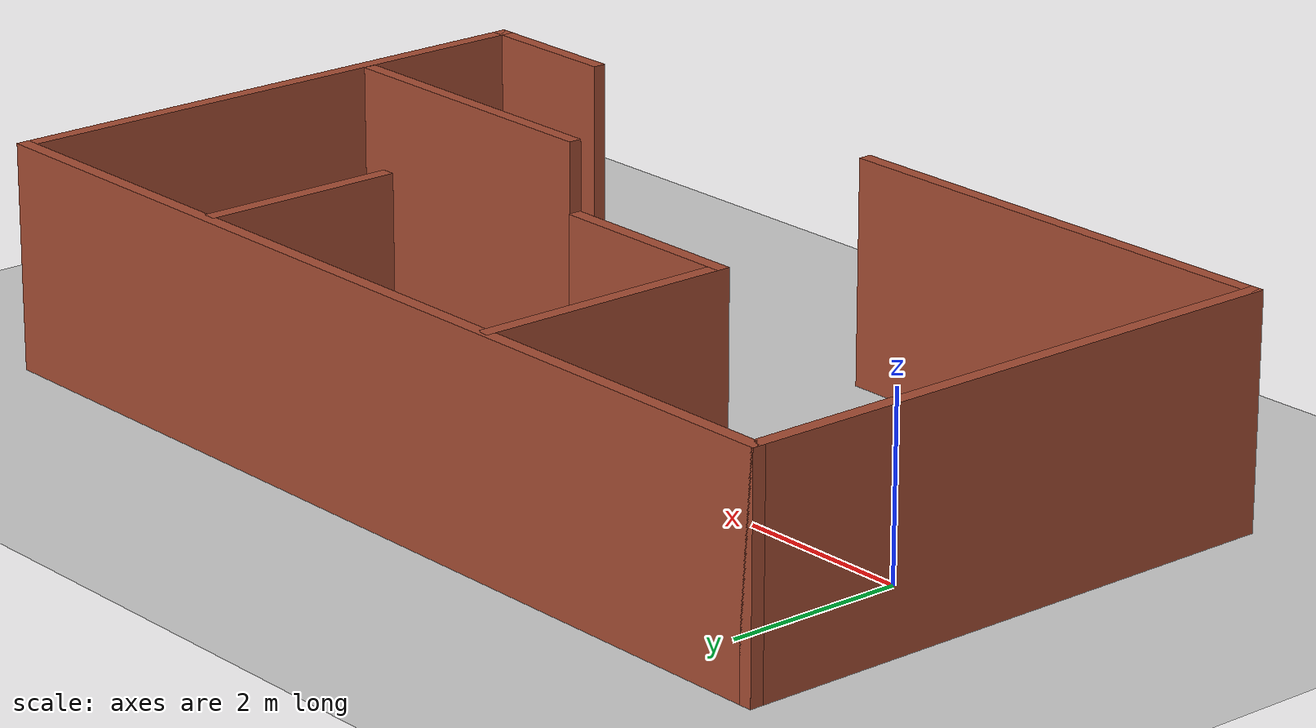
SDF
<sdf version="1.7">
 <world name="default">
  <light name="sun" type="directional">
   <pose>0 0 10 0 -0 0</pose>
   <diffuse>0.8 0.8 0.8 1</diffuse>
   <specular>0.2 0.2 0.2 1</specular>
   <attenuation>
    <range>1000</range>
    <constant>0.9</constant>
    <linear>0.01</linear>
    <quadratic>0.001</quadratic>
   </attenuation>
   <direction>-0.5 0.1 -0.9</direction>
   <spot><inner_angle>0</inner_angle><outer_angle>0</outer_angle><falloff>0</falloff></spot>
  </light>
  <model name="ground_plane">
   <static>1</static>
   <link name="link">
    <collision name="collision">
     <geometry><plane><normal>0 0 1</normal><size>100 100</size></plane></geometry>
     <surface>
      <contact><collide_bitmask>65535</collide_bitmask></contact>
      <friction><ode><mu>100</mu><mu2>50</mu2></ode></friction>
     </surface>
    </collision>
    <visual name="visual">
     <cast_shadows>0</cast_shadows>
     <geometry><plane><normal>0 0 1</normal><size>100 100</size></plane></geometry>
     <material>
      <script><uri>file://media/materials/scripts/gazebo.material</uri><name>Gazebo/Grey</name></script>
     </material>
    </visual>
   </link>
  </model>
  <gravity>0 0 -9.8</gravity>
  <magnetic_field>6e-06 2.3e-05 -4.2e-05</magnetic_field>
  <atmosphere type="adiabatic"/>
  <physics type="ode">
   <max_step_size>0.001</max_step_size>
   <real_time_factor>1</real_time_factor>
   <real_time_update_rate>1000</real_time_update_rate>
  </physics>
  <scene><ambient>0.4 0.4 0.4 1</ambient><background>0.7 0.7 0.7 1</background><shadows>1</shadows></scene>
  <audio><device>default</device></audio>
  <spherical_coordinates>
   <surface_model>EARTH_WGS84</surface_model>
   <latitude_deg>0</latitude_deg>
   <longitude_deg>0</longitude_deg>
   <elevation>0</elevation>
   <heading_deg>0</heading_deg>
  </spherical_coordinates>
  <model name="my_bot">
   <link name="base_link">
    <inertial>
     <pose>0.068049 0 0.1 0 -0 0</pose>
     <mass>0.61</mass>
     <inertia>
      <ixx>0.00568583</ixx>
      <ixy>0</ixy>
      <ixz>0.000501</ixz>
      <iyy>0.00596412</iyy>
      <iyz>0</iyz>
      <izz>0.00786829</izz>
     </inertia>
    </inertial>
    <collision name="base_link_fixed_joint_lump__chassis_collision">
     <pose>0.075 0 0.085 0 -0 0</pose>
     <geometry><box><size>0.3 0.3 0.15</size></box></geometry>
    </collision>
    <collision name="base_link_fixed_joint_lump__caster_wheel_collision_1">
     <pose>0.151 0 -0 0 -0 0</pose>
     <geometry><sphere><radius>0.05</radius></sphere></geometry>
     <surface><friction><ode><mu>0.001</mu><mu2>0.001</mu2></ode></friction></surface>
    </collision>
    <collision name="base_link_fixed_joint_lump__laser_frame_collision_2">
     <pose>0.025 0 0.185 0 -0 0</pose>
     <geometry><cylinder><length>0.05</length><radius>0.04</radius></cylinder></geometry>
    </collision>
    <visual name="base_link_fixed_joint_lump__chassis_visual">
     <pose>0.075 0 0.085 0 -0 0</pose>
     <geometry><box><size>0.3 0.3 0.15</size></box></geometry>
     <material>
      <script><name>Gazebo/Orange</name><uri>file://media/materials/scripts/gazebo.material</uri></script>
     </material>
    </visual>
    <visual name="base_link_fixed_joint_lump__caster_wheel_visual_1">
     <pose>0.151 0 -0 0 -0 0</pose>
     <geometry><sphere><radius>0.05</radius></sphere></geometry>
     <material>
      <script><name>Gazebo/Black</name><uri>file://media/materials/scripts/gazebo.material</uri></script>
     </material>
    </visual>
    <visual name="base_link_fixed_joint_lump__laser_frame_visual_2">
     <pose>0.025 0 0.185 0 -0 0</pose>
     <geometry><cylinder><length>0.05</length><radius>0.04</radius></cylinder></geometry>
     <material>
      <script><name>Gazebo/Black</name><uri>file://media/materials/scripts/gazebo.material</uri></script>
     </material>
    </visual>
    <sensor name="laser" type="ray">
     <visualize>1</visualize>
     <always_on>1</always_on>
     <update_rate>10</update_rate>
     <ray>
      <scan>
       <horizontal>
        <samples>360</samples>
        <resolution>1</resolution>
        <min_angle>-3.14</min_angle>
        <max_angle>3.14</max_angle>
       </horizontal>
       <vertical><samples>1</samples><min_angle>0</min_angle><max_angle>0</max_angle></vertical>
      </scan>
      <range><min>0.3</min><max>12</max></range>
     </ray>
     <plugin name="laser_controller" filename="libgazebo_ros_ray_sensor.so">
      <ros><argument>~/out:=scan</argument></ros>
      <output_type>sensor_msgs/LaserScan</output_type>
      <frame_name>laser_frame</frame_name>
     </plugin>
     <pose>0.025 0 0.185 0 -0 0</pose>
    </sensor>
   </link>
   <joint name="left_wheel_joint" type="revolute">
    <pose relative_to="base_link">0 0.175 0 -1.5708 0 0</pose>
    <parent>base_link</parent>
    <child>left_wheel</child>
    <axis>
     <xyz>0 0 1</xyz>
     <limit><lower>-1e+16</lower><upper>1e+16</upper></limit>
     <dynamics><spring_reference>0</spring_reference><spring_stiffness>0</spring_stiffness></dynamics>
    </axis>
   </joint>
   <link name="left_wheel">
    <pose relative_to="left_wheel_joint">0 0 0 0 -0 0</pose>
    <inertial>
     <mass>0.05</mass>
     <inertia>
      <ixx>3.79167e-05</ixx>
      <ixy>0</ixy>
      <ixz>0</ixz>
      <iyy>3.79167e-05</iyy>
      <iyz>0</iyz>
      <izz>6.25e-05</izz>
     </inertia>
    </inertial>
    <collision name="left_wheel_collision"><geometry><sphere><radius>0.05</radius></sphere></geometry></collision>
    <visual name="left_wheel_visual">
     <geometry><cylinder><length>0.04</length><radius>0.05</radius></cylinder></geometry>
     <material>
      <script><name>Gazebo/Blue</name><uri>file://media/materials/scripts/gazebo.material</uri></script>
     </material>
    </visual>
   </link>
   <joint name="right_wheel_joint" type="revolute">
    <pose relative_to="base_link">0 -0.175 0 1.5708 -0 0</pose>
    <parent>base_link</parent>
    <child>right_wheel</child>
    <axis>
     <xyz>0 0 -1</xyz>
     <limit><lower>-1e+16</lower><upper>1e+16</upper></limit>
     <dynamics><spring_reference>0</spring_reference><spring_stiffness>0</spring_stiffness></dynamics>
    </axis>
   </joint>
   <link name="right_wheel">
    <pose relative_to="right_wheel_joint">0 0 0 0 -0 0</pose>
    <inertial>
     <mass>0.05</mass>
     <inertia>
      <ixx>3.79167e-05</ixx>
      <ixy>0</ixy>
      <ixz>0</ixz>
      <iyy>3.79167e-05</iyy>
      <iyz>0</iyz>
      <izz>6.25e-05</izz>
     </inertia>
    </inertial>
    <collision name="right_wheel_collision">
     <geometry><sphere><radius>0.05</radius></sphere></geometry>
    </collision>
    <visual name="right_wheel_visual">
     <geometry><cylinder><length>0.04</length><radius>0.05</radius></cylinder></geometry>
     <material>
      <script><name>Gazebo/Blue</name><uri>file://media/materials/scripts/gazebo.material</uri></script>
     </material>
    </visual>
   </link>
   <static>0</static>
   <plugin name="diff_drive" filename="libgazebo_ros_diff_drive.so">
    <left_joint>left_wheel_joint</left_joint>
    <right_joint>right_wheel_joint</right_joint>
    <wheel_separation>0.35</wheel_separation>
    <wheel_diameter>0.1</wheel_diameter>
    <max_wheel_torque>200</max_wheel_torque>
    <max_wheel_acceleration>10</max_wheel_acceleration>
    <odometry_frame>odom</odometry_frame>
    <robot_base_frame>base_link</robot_base_frame>
    <publish_odom>1</publish_odom>
    <publish_odom_tf>1</publish_odom_tf>
    <publish_wheel_tf>1</publish_wheel_tf>
   </plugin>
   <pose>-0.039986 0.000838 0.049997 1.5e-05 -2.1e-05 0.002583</pose>
  </model>
  <model name="new">
   <pose>4.46809 -0.309616 0 0 -0 0</pose>
   <link name="Wall_10">
    <collision name="Wall_10_Collision">
     <geometry><box><size>1.75 0.15 2.5</size></box></geometry>
     <pose>0 0 1.25 0 -0 0</pose>
    </collision>
    <visual name="Wall_10_Visual">
     <pose>0 0 1.25 0 -0 0</pose>
     <geometry><box><size>1.75 0.15 2.5</size></box></geometry>
     <material>
      <script><uri>file://media/materials/scripts/gazebo.material</uri><name>Gazebo/Bricks</name></script>
      <ambient>1 1 1 1</ambient>
     </material>
     <meta><layer>0</layer></meta>
    </visual>
    <pose>4.875 -3.175 0 0 -0 3.14159</pose>
   </link>
   <link name="Wall_13">
    <collision name="Wall_13_Collision">
     <geometry><box><size>3 0.15 2.5</size></box></geometry>
     <pose>0 0 1.25 0 -0 0</pose>
    </collision>
    <visual name="Wall_13_Visual">
     <pose>0 0 1.25 0 -0 0</pose>
     <geometry><box><size>3 0.15 2.5</size></box></geometry>
     <material>
      <script><uri>file://media/materials/scripts/gazebo.material</uri><name>Gazebo/Bricks</name></script>
      <ambient>1 1 1 1</ambient>
     </material>
     <meta><layer>0</layer></meta>
    </visual>
    <pose>-1.90471 1.70374 0 0 -0 -1.5708</pose>
   </link>
   <link name="Wall_14">
    <collision name="Wall_14_Collision">
     <geometry><box><size>2.25 0.15 2.5</size></box></geometry>
     <pose>0 0 1.25 0 -0 0</pose>
    </collision>
    <visual name="Wall_14_Visual">
     <pose>0 0 1.25 0 -0 0</pose>
     <geometry><box><size>2.25 0.15 2.5</size></box></geometry>
     <material>
      <script><uri>file://media/materials/scripts/gazebo.material</uri><name>Gazebo/Bricks</name></script>
      <ambient>1 1 1 1</ambient>
     </material>
     <meta><layer>0</layer></meta>
    </visual>
    <pose>-0.854711 0.278739 0 0 -0 0</pose>
   </link>
   <link name="Wall_17">
    <collision name="Wall_17_Collision">
     <geometry><box><size>3.5 0.15 2.5</size></box></geometry>
     <pose>0 0 1.25 0 -0 0</pose>
    </collision>
    <visual name="Wall_17_Visual">
     <pose>0 0 1.25 0 -0 0</pose>
     <geometry><box><size>3.5 0.15 2.5</size></box></geometry>
     <material>
      <script><uri>file://media/materials/scripts/gazebo.material</uri><name>Gazebo/Bricks</name></script>
      <ambient>1 1 1 1</ambient>
     </material>
     <meta><layer>0</layer></meta>
    </visual>
    <pose>3.84128 -1.24295 0 0 -0 0</pose>
   </link>
   <link name="Wall_19">
    <collision name="Wall_19_Collision">
     <geometry><box><size>2.25 0.15 2.5</size></box></geometry>
     <pose>0 0 1.25 0 -0 0</pose>
    </collision>
    <visual name="Wall_19_Visual">
     <pose>0 0 1.25 0 -0 0</pose>
     <geometry><box><size>2.25 0.15 2.5</size></box></geometry>
     <material>
      <script><uri>file://media/materials/scripts/gazebo.material</uri><name>Gazebo/Bricks</name></script>
      <ambient>1 1 1 1</ambient>
     </material>
     <meta><layer>0</layer></meta>
    </visual>
    <pose>2.51323 2.00935 0 0 -0 -1.5708</pose>
   </link>
   <link name="Wall_5">
    <collision name="Wall_5_Collision">
     <geometry><box><size>6.5 0.15 2.5</size></box></geometry>
     <pose>0 0 1.25 0 -0 0</pose>
    </collision>
    <visual name="Wall_5_Visual">
     <pose>0 0 1.25 0 -0 0</pose>
     <geometry><box><size>6.5 0.15 2.5</size></box></geometry>
     <material>
      <script><uri>file://media/materials/scripts/gazebo.material</uri><name>Gazebo/Bricks</name></script>
      <ambient>1 1 1 1</ambient>
     </material>
     <meta><layer>0</layer></meta>
    </visual>
    <pose>-5.675 -0 0 0 -0 -1.5708</pose>
   </link>
   <link name="Wall_6">
    <collision name="Wall_6_Collision">
     <geometry><box><size>5.5 0.15 2.5</size></box></geometry>
     <pose>0 0 1.25 0 -0 0</pose>
    </collision>
    <visual name="Wall_6_Visual">
     <pose>0 0 1.25 0 -0 0</pose>
     <geometry><box><size>5.5 0.15 2.5</size></box></geometry>
     <material>
      <script><uri>file://media/materials/scripts/gazebo.material</uri><name>Gazebo/Bricks</name></script>
      <ambient>1 1 1 1</ambient>
     </material>
     <meta><layer>0</layer></meta>
    </visual>
    <pose>-3 -3.175 0 0 -0 0</pose>
   </link>
   <link name="Wall_8">
    <collision name="Wall_8_Collision">
     <geometry><box><size>11.5 0.15 2.5</size></box></geometry>
     <pose>0 0 1.25 0 -0 0</pose>
    </collision>
    <visual name="Wall_8_Visual">
     <pose>0 0 1.25 0 -0 0</pose>
     <geometry><box><size>11.5 0.15 2.5</size></box></geometry>
     <material>
      <script><uri>file://media/materials/scripts/gazebo.material</uri><name>Gazebo/Bricks</name></script>
      <ambient>1 1 1 1</ambient>
     </material>
     <meta><layer>0</layer></meta>
    </visual>
    <pose>-0 3.175 0 0 -0 0</pose>
   </link>
   <link name="Wall_9">
    <collision name="Wall_9_Collision">
     <geometry><box><size>6.5 0.15 2.5</size></box></geometry>
     <pose>0 0 1.25 0 -0 0</pose>
    </collision>
    <visual name="Wall_9_Visual">
     <pose>0 0 1.25 0 -0 0</pose>
     <geometry><box><size>6.5 0.15 2.5</size></box></geometry>
     <material>
      <script><uri>file://media/materials/scripts/gazebo.material</uri><name>Gazebo/Bricks</name></script>
      <ambient>1 1 1 1</ambient>
     </material>
     <meta><layer>0</layer></meta>
    </visual>
    <pose>5.675 -0 0 0 -0 -1.5708</pose>
   </link>
   <static>1</static>
  </model>
 </world>
</sdf>
